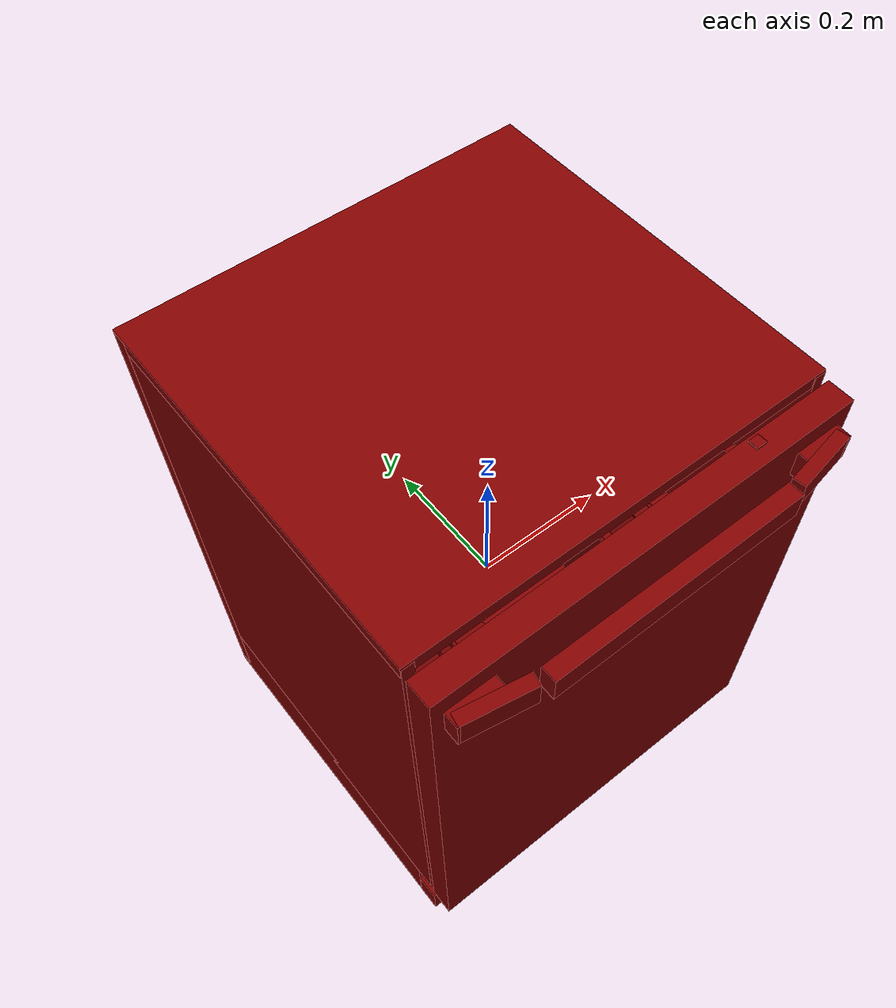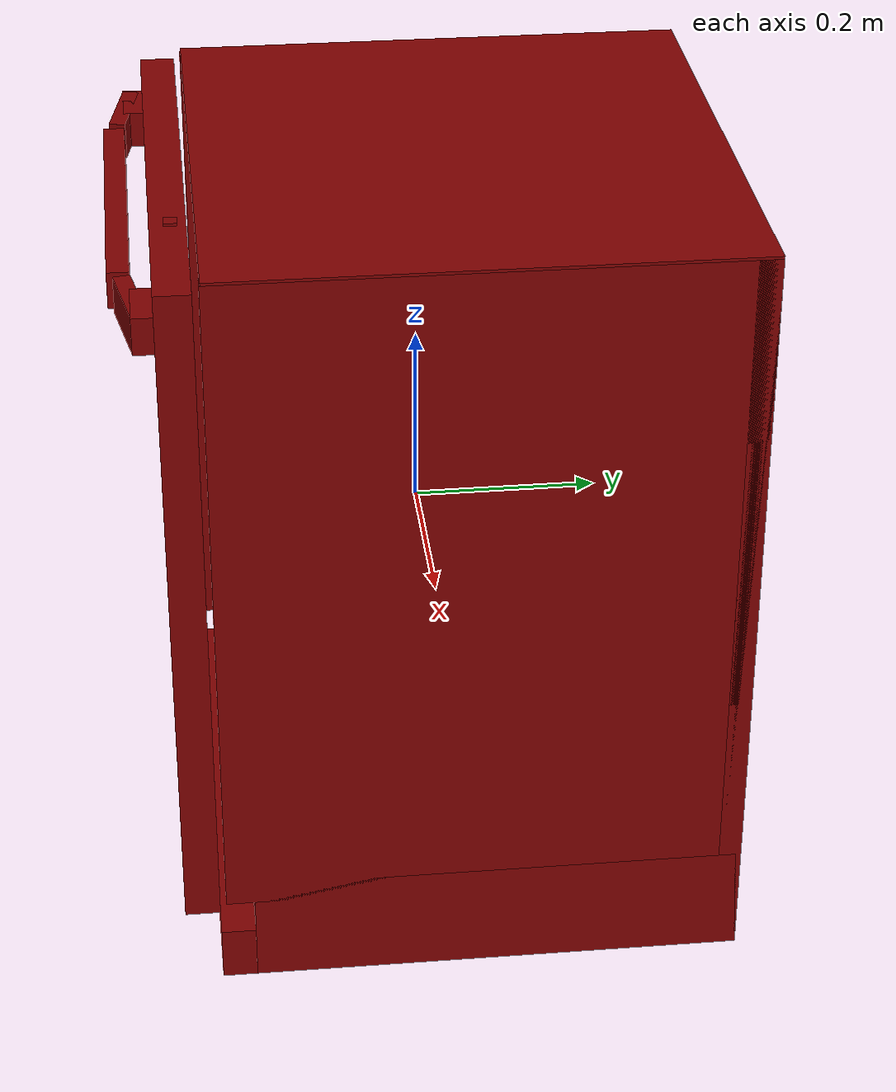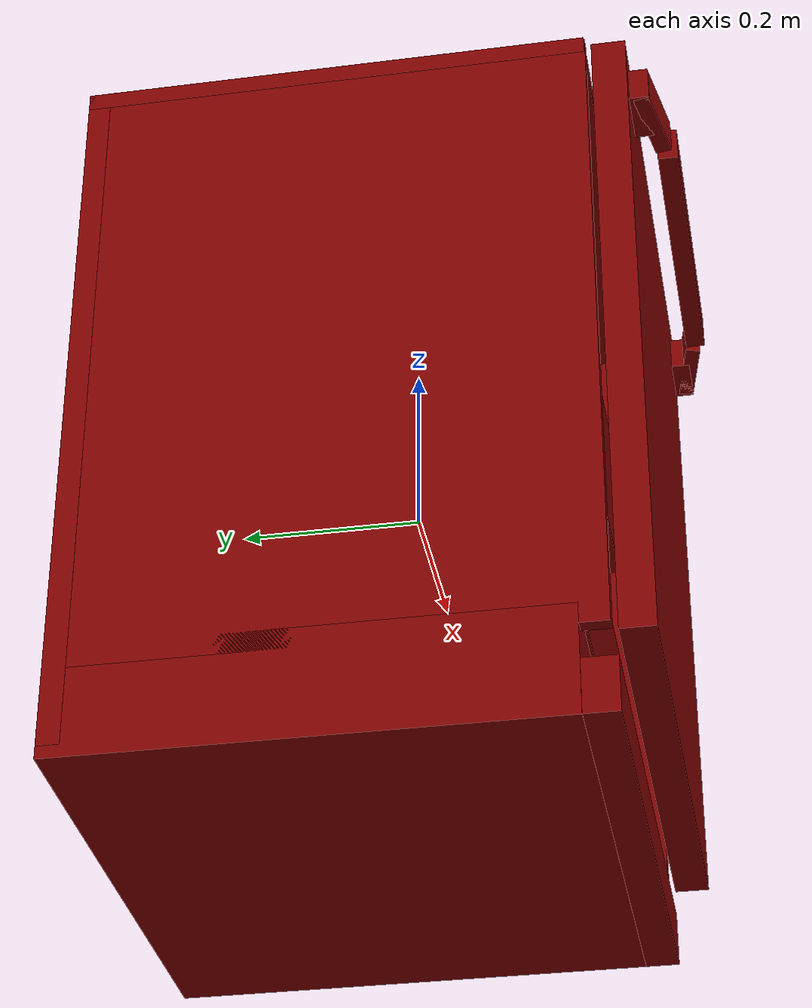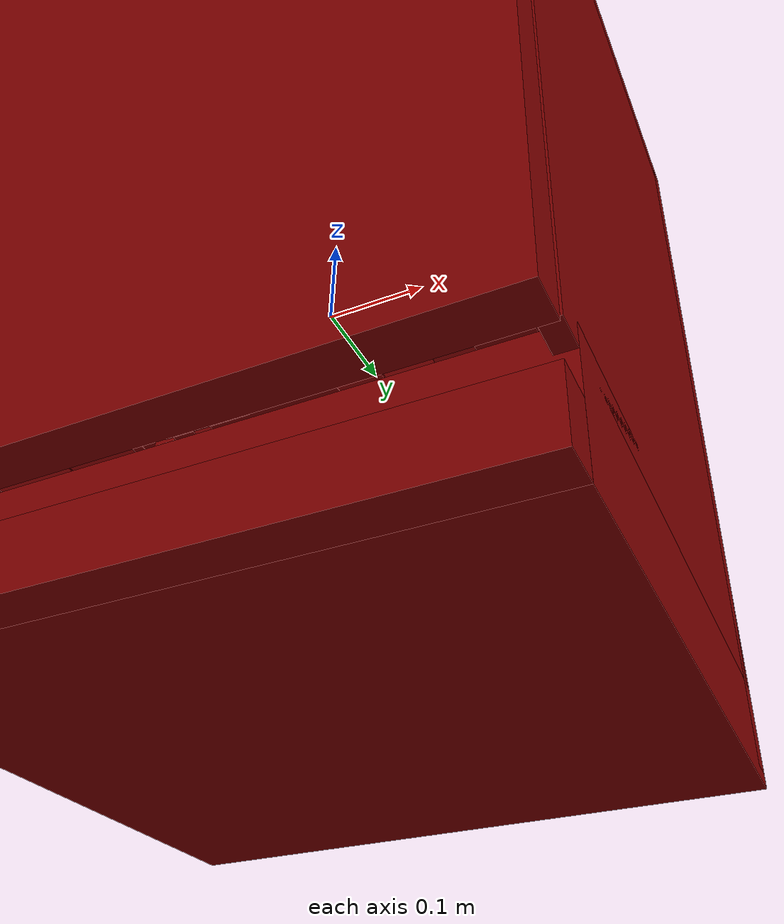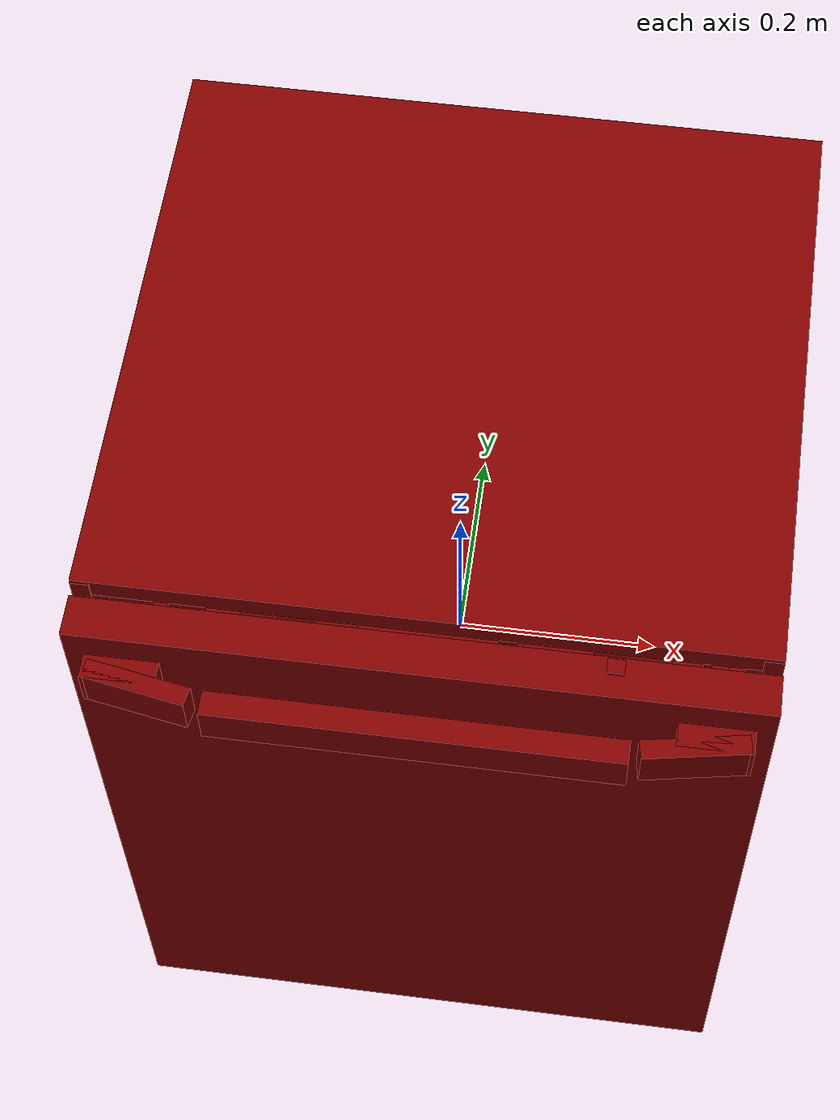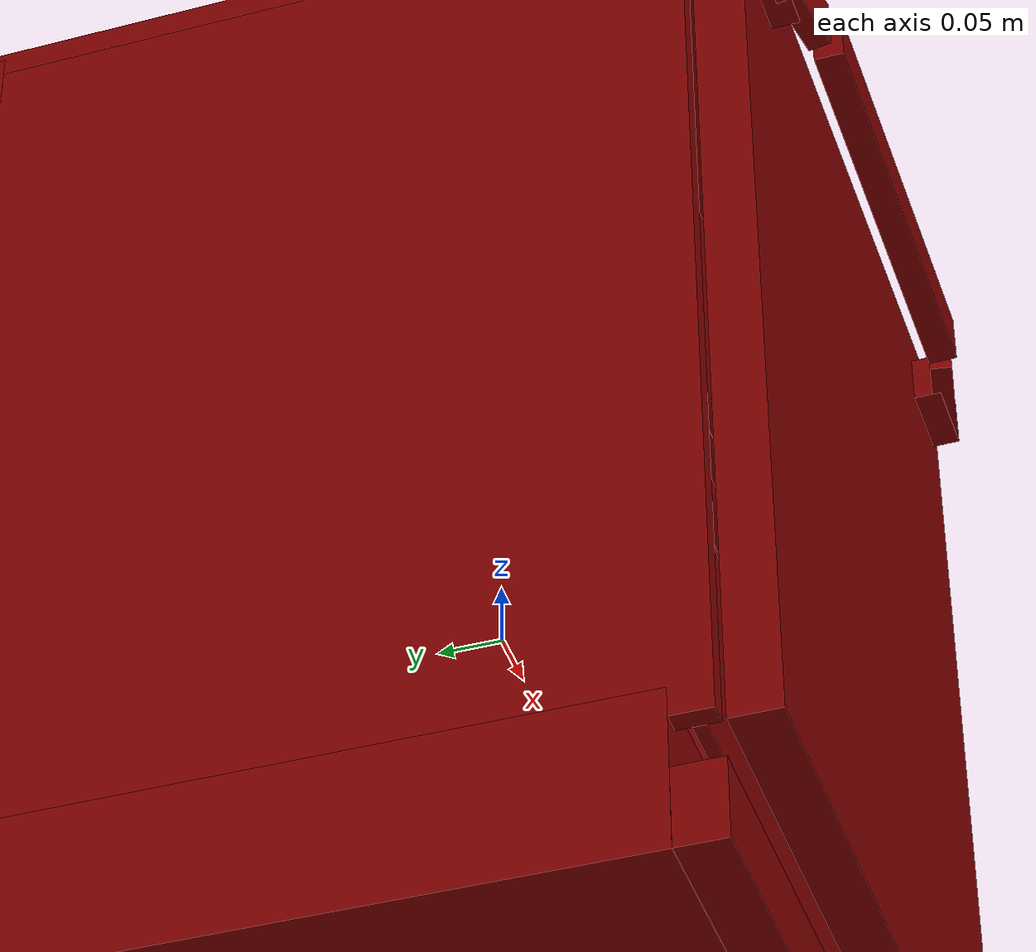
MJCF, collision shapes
<?xml version='1.0' encoding='UTF-8'?>
<mujoco model="model">
  <option timestep="0.002" gravity="0.0 0.0 -9.81"/>
  <compiler angle="radian"/>
  <asset>
    <mesh file="visuals/button_power.obj" name="button_power_vis"/>
    <mesh file="visuals/Body001.obj" name="Body001_vis"/>
    <mesh file="visuals/door.obj" name="door_vis"/>
    <mesh file="visuals/rack0.obj" name="rack0_vis"/>
    <mesh file="visuals/rack1.obj" name="rack1_vis"/>
    <texture file="visuals/T_BC001.png" name="Body001_material" type="2d"/>
    <material name="Body001_material" rgba="1 1 1 1.0" texture="Body001_material" shininess="0.4472135901451111" specular="1"/>
    <texture file="visuals/T_BC001.png" name="door_material" type="2d"/>
    <material name="door_material" rgba="1 1 1 1.0" texture="door_material" shininess="0.4472135901451111" specular="0.3103448502657381"/>
    <texture file="visuals/T_BC001.png" name="button_power_material" type="2d"/>
    <material name="button_power_material" rgba="1 1 1 1.0" texture="button_power_material" shininess="0.4472135901451111" specular="0.3103448502657381"/>
    <texture file="visuals/T_BC001.png" name="rack0_material" type="2d"/>
    <material name="rack0_material" rgba="1 1 1 1.0" texture="rack0_material" shininess="0.4472135901451111" specular="6"/>
    <texture file="visuals/T_BC001.png" name="rack1_material" type="2d"/>
    <material name="rack1_material" rgba="1 1 1 1.0" texture="rack1_material" shininess="0.4472135901451111" specular="6"/>
  </asset>
  <default>
    <default class="visual">
      <geom conaffinity="0" contype="0" group="1" type="mesh"/>
    </default>
    <default class="collision">
      <geom group="0" rgba="0.5 0 0 0.5"/>
    </default>
    <default class="spawn">
      <geom group="0" rgba="1 1 1 0.5" contype="0" conaffinity="0"/>
      <site group="0" rgba="1 1 1 0.5"/>
    </default>
    <default class="region">
      <geom group="1" conaffinity="0" contype="0" rgba="0 1 0 0"/>
    </default>
  </default>
  <worldbody>
    <body>
      <body name="object">
        <geom mesh="Body001_vis" type="mesh" solimp="0.998 0.998 0.001" solref="0.001 1" friction="0.95 0.3 0.1" class="visual" material="Body001_material"/>
        <geom class="collision" type="box" pos="0.00008620 0.05983328 -0.36419403" size="0.3016267418861389 0.26699212193489075 0.0611201748251915" quat="1.0 0.0 0.0 0.0"/>
        <geom class="collision" type="box" pos="0.00000007 0.04486157 0.41210702" size="0.30171290040016174 0.28196385502815247 0.010303902439773083" quat="1.0 0.0 0.0 0.0"/>
        <geom class="collision" type="box" pos="0.29328403 0.04432606 0.04678811" size="0.008428912609815598 0.28249937295913696 0.37254369258880615" quat="1.0 0.0 0.0 0.0"/>
        <geom class="collision" type="box" pos="0.00000003 0.31450621 0.00412353" size="0.3017129600048065 0.012319179251790047 0.41520828008651733" quat="1.0 0.0 0.0 0.0"/>
        <geom class="collision" type="box" pos="-0.29329476 0.04432606 0.04678811" size="0.008245748467743397 0.28249937295913696 0.37254369258880615" quat="1.0 0.0 0.0 0.0"/>
        <geom class="collision" type="box" pos="-0.27969834 0.10069304 0.13969295" size="0.008072211407124996 0.14516490697860718 0.008339897729456425" quat="1.0 0.0 0.0 0.0"/>
        <geom class="collision" type="box" pos="0.28014010 0.10069304 0.13968127" size="0.008715931326150894 0.14517070353031158 0.007516654673963785" quat="1.0 0.0 0.0 0.0"/>
        <geom class="collision" type="box" pos="0.27828360 0.04413274 0.16175027" size="0.011779433116316795 0.20173673331737518 0.003300129435956478" quat="1.0 0.0 0.0 0.0"/>
        <geom class="collision" type="box" pos="0.27821636 0.04413274 -0.15918684" size="0.011056333780288696 0.20172521471977234 0.0036410565953701735" quat="1.0 0.0 0.0 0.0"/>
        <geom class="collision" type="box" pos="0.27974531 0.10069304 -0.18106156" size="0.008320406079292297 0.14515919983386993 0.009179674088954926" quat="1.0 0.0 0.0 0.0"/>
        <geom class="collision" type="box" pos="-0.28040370 0.10069304 -0.18106156" size="0.008815526962280273 0.14516490697860718 0.008024648763239384" quat="1.0 0.0 0.0 0.0"/>
        <geom class="collision" type="box" pos="-0.27876383 0.04413274 -0.15908442" size="0.01166205108165741 0.20172521471977234 0.0036444365978240967" quat="1.0 0.0 0.0 0.0"/>
        <geom class="collision" type="box" pos="-0.27803135 0.04413274 0.16204644" size="0.010908546857535839 0.2017364799976349 0.0035747108049690723" quat="1.0 0.0 0.0 0.0"/>
        <geom class="collision" type="box" pos="-0.00000000 -0.22599141 -0.39492956" size="0.3017129600048065 0.018683088943362236 0.030384669080376625" quat="1.0 0.0 0.0 0.0"/>
        <body name="door">
          <joint axis="1.0 0.0 0.0" pos="-1e-08 -0.27813975134308216 -0.32796516841789247" limited="true" name="door_joint" range="0.0 0.5235987755982988" type="hinge" damping="1" frictionloss="10" armature="1" stiffness="2"/>
          <geom mesh="door_vis" type="mesh" solimp="0.998 0.998 0.001" solref="0.001 1" friction="0.95 0.3 0.1" class="visual" material="door_material"/>
          <geom class="collision" type="box" pos="-0.23685500 -0.30370354 0.35991735" size="0.04660938307642937 0.008954321034252644 0.019917838275432587" quat="7.52008944004956e-08 0.9960660338401794 -0.08861380070447922 -6.690157761113369e-09" name="door_handle_2"/>
          <geom class="collision" type="box" pos="-0.25305581 -0.28935384 0.35991735" size="0.03264765068888664 0.015286944806575775 0.019917840138077736" quat="1.0 0.0 0.0 0.0"/>
          <geom class="collision" type="box" pos="0.23639640 -0.30370354 0.35991735" size="0.04660938307642937 0.008954321034252644 0.019917838275432587" quat="0.9960660338401794 0.0 0.0 0.08861380070447922" name="door_handle_1"/>
          <geom class="collision" type="box" pos="0.25259721 -0.28935384 0.35991735" size="0.03264765068888664 0.015286942012608051 0.019917838275432587" quat="1.0 0.0 0.0 0.0"/>
          <geom class="collision" type="box" pos="-0.00000001 -0.26390969 0.03707438" size="0.30171290040016174 0.018862580880522728 0.3735530972480774" quat="1.0 0.0 0.0 0.0"/>
          <geom class="collision" type="box" pos="0.00141905 -0.31558469 0.35991735" size="0.18082599341869354 0.011358349584043026 0.019917840138077736" quat="1.0 0.0 0.0 0.0" name="door_handle_main"/>
          <geom class="collision" type="box" pos="-0.00000001 -0.27324223 0.03629929" size="0.2936041057109833 0.0048975213430821896 0.36426445841789246" quat="1.0 0.0 0.0 0.0" name="door_main"/>
          <body name="button_power">
            <joint axis="0.0 0.0 -1.0" pos="0.16338511 -0.26136610 0.42208216" limited="true" name="button_power_joint" range="0.0 0.002" type="slide" damping="1" frictionloss="1" armature=".01" springref="-1" stiffness="4"/>
            <geom mesh="button_power_vis" type="mesh" solimp="0.998 0.998 0.001" solref="0.001 1" friction="0.95 0.3 0.1" class="visual" material="button_power_material"/>
            <geom class="collision" type="box" pos="0.16338512 -0.26136610 0.42371369" size="0.007603623438626528 0.006889847572892904 0.0014292041305452585" quat="1.0 0.0 0.0 0.0"/>
          </body>
        </body>
        <body name="rack0">
          <geom class="region" name="reg_rack0" type="box" pos="7.292000000000409e-05 0.017167280000000007 -0.0797627" size="0.24345738 0.20266043 0.13212106"/>
          <joint axis="0.0 -1.0 0.0" pos="0.00002422 0.03112435 -0.16737707" limited="true" name="rack0_joint" range="0.0 0.08" type="slide" damping="1" frictionloss="1" armature=".01" stiffness="0.05"/>
          <geom mesh="rack0_vis" type="mesh" solimp="0.998 0.998 0.001" solref="0.001 1" friction="0.95 0.3 0.1" class="visual" material="rack0_material"/>
          <geom class="collision" type="box" pos="-0.06689170 0.02304492 -0.23635083" size="0.013266862370073795 0.006309156771749258 0.002024671994149685" quat="1.0 0.0 0.0 0.0"/>
          <geom class="collision" type="box" pos="-0.07983516 0.02307597 -0.23276207" size="0.0009215290774591267 0.006419182289391756 0.002024671994149685" quat="1.0 0.0 0.0 0.0"/>
          <geom class="collision" type="box" pos="-0.08394356 0.02307597 -0.23101783" size="0.004006793722510338 0.006419182755053043 0.0005324396188370883" quat="1.0 0.0 0.0 0.0"/>
          <geom class="collision" type="box" pos="-0.08829404 0.02307597 -0.22744929" size="0.0006814482621848583 0.006419182289391756 0.004163840319961309" quat="1.0 0.0 0.0 0.0"/>
          <geom class="collision" type="box" pos="-0.04980827 -0.03433928 -0.24037558" size="0.013340570963919163 0.006175429560244083 0.006049413233995438" quat="1.0 0.0 0.0 0.0"/>
          <geom class="collision" type="box" pos="-0.08829404 -0.03450436 -0.22744929" size="0.0006814482621848583 0.006419182289391756 0.004163840319961309" quat="1.0 0.0 0.0 0.0"/>
          <geom class="collision" type="box" pos="-0.04980827 0.02324105 -0.24037558" size="0.013340570963919163 0.006175429560244083 0.006049413233995438" quat="1.0 0.0 0.0 0.0"/>
          <geom class="collision" type="box" pos="-0.08394356 -0.03450436 -0.23101783" size="0.004006793722510338 0.006419182755053043 0.0005324396188370883" quat="1.0 0.0 0.0 0.0"/>
          <geom class="collision" type="box" pos="-0.07983516 -0.03450436 -0.23276207" size="0.0009215290774591267 0.006419182289391756 0.002024671994149685" quat="1.0 0.0 0.0 0.0"/>
          <geom class="collision" type="box" pos="-0.06689170 -0.03453541 -0.23635083" size="0.013266862370073795 0.006309156771749258 0.002024671994149685" quat="1.0 0.0 0.0 0.0"/>
          <geom class="collision" type="box" pos="-0.06689170 -0.09988754 -0.23635083" size="0.013266862370073795 0.006309156771749258 0.002024671994149685" quat="1.0 0.0 0.0 0.0"/>
          <geom class="collision" type="box" pos="-0.07983516 -0.09985649 -0.23276207" size="0.0009215290774591267 0.006419182289391756 0.002024671994149685" quat="1.0 0.0 0.0 0.0"/>
          <geom class="collision" type="box" pos="-0.08394356 -0.09985649 -0.23101783" size="0.004006793722510338 0.006419182755053043 0.0005324396188370883" quat="1.0 0.0 0.0 0.0"/>
          <geom class="collision" type="box" pos="-0.08829404 -0.09985649 -0.22744929" size="0.0006814482621848583 0.006419182289391756 0.004163840319961309" quat="1.0 0.0 0.0 0.0"/>
          <geom class="collision" type="box" pos="-0.04980827 -0.09969142 -0.24037558" size="0.013340570963919163 0.006175429560244083 0.006049413233995438" quat="1.0 0.0 0.0 0.0"/>
          <geom class="collision" type="box" pos="-0.04980827 -0.14260092 -0.24037558" size="0.013340570963919163 0.006175429560244083 0.006049413233995438" quat="1.0 0.0 0.0 0.0"/>
          <geom class="collision" type="box" pos="-0.08829404 -0.14276600 -0.22744929" size="0.0006814482621848583 0.006419182289391756 0.004163840319961309" quat="1.0 0.0 0.0 0.0"/>
          <geom class="collision" type="box" pos="-0.08394356 -0.14276600 -0.23101783" size="0.004006793722510338 0.006419182755053043 0.0005324396188370883" quat="1.0 0.0 0.0 0.0"/>
          <geom class="collision" type="box" pos="-0.07983516 -0.14276600 -0.23276207" size="0.0009215290774591267 0.006419182289391756 0.002024671994149685" quat="1.0 0.0 0.0 0.0"/>
          <geom class="collision" type="box" pos="-0.06689170 -0.14279705 -0.23635083" size="0.013266862370073795 0.006309156771749258 0.002024671994149685" quat="1.0 0.0 0.0 0.0"/>
          <geom class="collision" type="box" pos="-0.02832828 0.07345534 -0.25889191" size="0.19184672832489014 0.012827771715819836 0.005360372830182314" quat="1.0 0.0 0.0 0.0"/>
          <geom class="collision" type="box" pos="-0.00507184 -0.16622451 -0.24287042" size="0.03811417520046234 0.006508534774184227 0.010936778038740158" quat="1.0 0.0 0.0 0.0"/>
          <geom class="collision" type="box" pos="-0.00507184 -0.16158303 -0.23641565" size="0.03811417520046234 0.006508534774184227 0.004481990821659565" quat="1.0 0.0 0.0 0.0"/>
          <geom class="collision" type="box" pos="-0.26045099 0.08568126 -0.16390529" size="0.0016526459949091077 0.17005625367164612 0.009929705411195755" quat="1.0 0.0 0.0 0.0"/>
          <geom class="collision" type="box" pos="-0.26048613 -0.09408942 -0.19091722" size="0.0016175021883100271 0.010302465409040451 0.036940351128578186" quat="1.0 0.0 0.0 0.0"/>
          <geom class="collision" type="box" pos="-0.26701790 -0.04439475 -0.16574785" size="0.005428370554000139 0.005095627158880234 0.0014640236040577292" quat="1.0 0.0 0.0 0.0"/>
          <geom class="collision" type="box" pos="-0.26724866 -0.04439475 -0.19372841" size="0.00519761024042964 0.005095629021525383 0.001811037422157824" quat="1.0 0.0 0.0 0.0"/>
          <geom class="collision" type="box" pos="-0.26724866 -0.04787228 -0.17928502" size="0.005197612103074789 0.0016182581894099712 0.013074970804154873" quat="1.0 0.0 0.0 0.0"/>
          <geom class="collision" type="box" pos="-0.26731455 0.10135947 -0.16857218" size="0.00418673362582922 0.14790117740631104 0.001782895065844059" quat="1.0 0.0 0.0 0.0"/>
          <geom class="collision" type="box" pos="-0.26274502 0.07581333 -0.15232554" size="0.004239172674715519 0.17992454767227173 0.0018912501400336623" quat="1.0 0.0 0.0 0.0"/>
          <geom class="collision" type="box" pos="-0.26632199 0.10135947 -0.17248717" size="0.0031942855566740036 0.14790129661560059 0.002412961097434163" quat="1.0 0.0 0.0 0.0"/>
          <geom class="collision" type="box" pos="-0.26632199 0.10135947 -0.19043123" size="0.003194286487996578 0.14790135622024536 0.0024129620287567377" quat="1.0 0.0 0.0 0.0"/>
          <geom class="collision" type="box" pos="-0.26632199 -0.03863039 -0.18146935" size="0.003194287419319153 0.007917609065771103 0.007178321480751038" quat="1.0 0.0 0.0 0.0"/>
          <geom class="collision" type="box" pos="-0.26632199 0.11468822 -0.18146935" size="0.0031942883506417274 0.13459277153015137 0.007178323343396187" quat="1.0 0.0 0.0 0.0"/>
          <geom class="collision" type="box" pos="-0.26386875 -0.02691536 -0.18146935" size="0.0007411234546452761 0.007917617447674274 0.007178325206041336" quat="1.0 0.0 0.0 0.0"/>
          <geom class="collision" type="box" pos="-0.26670945 0.10133565 -0.19365176" size="0.00465842429548502 0.14793789386749268 0.00188772554975003" quat="1.0 0.0 0.0 0.0"/>
          <geom class="collision" type="box" pos="-0.26286417 0.02139899 -0.19251606" size="0.004065677057951689 0.01642462983727455 0.01875312812626362" quat="1.0 0.0 0.0 0.0"/>
          <geom class="collision" type="box" pos="-0.26286417 0.06417135 -0.19251606" size="0.004065679386258125 0.02429373562335968 0.018753135576844215" quat="1.0 0.0 0.0 0.0"/>
          <geom class="collision" type="box" pos="-0.26286417 0.10973596 -0.19251606" size="0.0040656812489032745 0.0185822993516922 0.018753143027424812" quat="1.0 0.0 0.0 0.0"/>
          <geom class="collision" type="box" pos="-0.26286417 0.19360224 -0.19251606" size="0.004065683111548424 0.062086962163448334 0.01875315047800541" quat="1.0 0.0 0.0 0.0"/>
          <geom class="collision" type="box" pos="0.26283953 0.19360224 -0.19251606" size="0.004090896341949701 0.06208697706460953 0.018753157928586006" quat="1.0 0.0 0.0 0.0"/>
          <geom class="collision" type="box" pos="0.26283953 0.10973596 -0.19251606" size="0.0040908982045948505 0.01858232170343399 0.018753165379166603" quat="1.0 0.0 0.0 0.0"/>
          <geom class="collision" type="box" pos="0.26283953 0.06417135 -0.19251606" size="0.00409090006724 0.024293772876262665 0.0187531728297472" quat="1.0 0.0 0.0 0.0"/>
          <geom class="collision" type="box" pos="0.26283953 0.02139899 -0.19251606" size="0.004090901929885149 0.01642468199133873 0.018753182142972946" quat="1.0 0.0 0.0 0.0"/>
          <geom class="collision" type="box" pos="0.26688278 0.10133565 -0.19365176" size="0.004881616216152906 0.14793843030929565 0.0018877298571169376" quat="1.0 0.0 0.0 0.0"/>
          <geom class="collision" type="box" pos="0.26381886 -0.02691536 -0.18146935" size="0.0007411260157823563 0.007917658425867558 0.007178346160799265" quat="1.0 0.0 0.0 0.0"/>
          <geom class="collision" type="box" pos="0.26627210 0.11468822 -0.18146935" size="0.0031943004578351974 0.13459356129169464 0.007178348023444414" quat="1.0 0.0 0.0 0.0"/>
          <geom class="collision" type="box" pos="0.26627210 -0.03863038 -0.18146935" size="0.003194301389157772 0.007917665876448154 0.007178349886089563" quat="1.0 0.0 0.0 0.0"/>
          <geom class="collision" type="box" pos="0.26627210 0.10135947 -0.19043123" size="0.0031943023204803467 0.14790238440036774 0.00241297809407115" quat="1.0 0.0 0.0 0.0"/>
          <geom class="collision" type="box" pos="0.26627210 0.10135947 -0.17248717" size="0.0031943032518029213 0.1479024440050125 0.0024129790253937244" quat="1.0 0.0 0.0 0.0"/>
          <geom class="collision" type="box" pos="0.26431802 0.07581333 -0.15207025" size="0.005862073507159948 0.1799258142709732 0.0021465064492076635" quat="1.0 0.0 0.0 0.0"/>
          <geom class="collision" type="box" pos="0.26726469 0.10135947 -0.16857218" size="0.0041867769323289394 0.14790256321430206 0.001782905892468989" quat="1.0 0.0 0.0 0.0"/>
          <geom class="collision" type="box" pos="0.26719877 -0.04787228 -0.17928502" size="0.005197659134864807 0.0016182699473574758 0.013075064867734909" quat="1.0 0.0 0.0 0.0"/>
          <geom class="collision" type="box" pos="0.26719877 -0.04439475 -0.19372841" size="0.005197660997509956 0.0050956797786056995 0.0018110501114279032" quat="1.0 0.0 0.0 0.0"/>
          <geom class="collision" type="box" pos="0.26696804 -0.04439475 -0.16574785" size="0.005428425036370754 0.005095681641250849 0.001464037224650383" quat="1.0 0.0 0.0 0.0"/>
          <geom class="collision" type="box" pos="0.26043624 -0.09408942 -0.19091722" size="0.0016175167402252555 0.010302581824362278 0.03694082051515579" quat="1.0 0.0 0.0 0.0"/>
          <geom class="collision" type="box" pos="0.26040110 0.08568126 -0.16390529" size="0.0016526614781469107 0.1700582355260849 0.009929830208420753" quat="1.0 0.0 0.0 0.0"/>
          <geom class="collision" type="box" pos="-0.02890452 0.03168826 -0.24256935" size="0.009459957480430603 0.19589801132678986 0.009459900669753551" quat="1.0 0.0 0.0 0.0"/>
          <geom class="collision" type="box" pos="-0.16545722 0.25682286 -0.15935749" size="0.09589129686355591 0.005256345961242914 0.08801061660051346" quat="1.0 0.0 0.0 0.0"/>
          <geom class="collision" type="box" pos="-0.05877124 0.24719654 -0.15439132" size="0.018606767058372498 0.005256484728306532 0.08341021835803986" quat="0.9204282760620117 0.0 -0.0 -0.3909115195274353"/>
          <geom class="collision" type="box" pos="-0.00184746 0.23384180 -0.15935749" size="0.04493672028183937 0.005945416167378426 0.08801066875457764" quat="1.0 0.0 0.0 0.0"/>
          <geom class="collision" type="box" pos="0.05490205 0.24348650 -0.15439132" size="0.018606767058372498 0.005256484728306532 0.08341021835803986" quat="0.3173389434814453 0.0 -0.0 -0.9483121633529663"/>
          <geom class="collision" type="box" pos="0.16230601 0.25682286 -0.15935749" size="0.09589140862226486 0.005256349220871925 0.08801072090864182" quat="1.0 0.0 0.0 0.0"/>
          <geom class="collision" type="box" pos="-0.25816810 0.03486273 -0.15935749" size="0.006974444258958101 0.22568096220493317 0.08801078051328659" quat="1.0 0.0 0.0 0.0"/>
          <geom class="collision" type="box" pos="-0.00009505 -0.19602218 -0.15935749" size="0.2634020149707794 0.005256377160549164 0.08801083266735077" quat="1.0 0.0 0.0 0.0"/>
          <geom class="collision" type="box" pos="0.25744751 0.03486269 -0.15935749" size="0.008079292252659798 0.22568118572235107 0.08801088482141495" quat="1.0 0.0 0.0 0.0"/>
          <geom class="collision" type="box" pos="-0.23729941 0.03486273 -0.24713471" size="0.023139994591474533 0.22568129003047943 0.0025168335996568203" quat="1.0 0.0 0.0 0.0"/>
          <geom class="collision" type="box" pos="-0.19341405 0.03486273 -0.23430004" size="0.22568948566913605 0.0025168827269226313 0.026395291090011597" quat="0.6152599453926086 0.34850409626960754 0.3485041558742523 0.6152600646018982"/>
          <geom class="collision" type="box" pos="-0.15570804 0.03486273 -0.23319724" size="0.22568948566913605 0.002516882959753275 0.02121862769126892" quat="0.279901921749115 0.649349570274353 0.6493496298789978 0.27990207076072693"/>
          <geom class="collision" type="box" pos="-0.11756045 0.03486273 -0.23934513" size="0.22568948566913605 0.0025168831925839186 0.0251455157995224" quat="0.5795987844467163 0.4050496518611908 0.4050496816635132 0.5795987844467163"/>
          <geom class="collision" type="box" pos="0.00046990 0.03486273 -0.23102578" size="0.09508517384529114 0.2256813943386078 0.002690754598006606" quat="1.0 0.0 0.0 0.0"/>
          <geom class="collision" type="box" pos="0.11886489 0.03486273 -0.23954162" size="0.22568948566913605 0.002516882959753275 0.025858500972390175" quat="0.4052272140979767 0.579474687576294 0.579474687576294 0.4052272439002991"/>
          <geom class="collision" type="box" pos="0.15557404 0.03486273 -0.23386314" size="0.22568948566913605 0.002516882959753275 0.021187731996178627" quat="0.6499353051185608 0.27853918075561523 0.2785392105579376 0.6499353051185608"/>
          <geom class="collision" type="box" pos="0.19398433 0.03486273 -0.23408159" size="0.22568948566913605 0.002516882959753275 0.028035128489136696" quat="0.3555333912372589 0.6112250089645386 0.6112250089645386 0.3555334210395813"/>
          <geom class="collision" type="box" pos="0.23743968 0.03486273 -0.24773141" size="0.02297111228108406 0.22568151354789734 0.0026653639506548643" quat="1.0 0.0 0.0 0.0"/>
          <geom class="collision" type="box" pos="0.19291317 0.04411633 -0.20596066" size="0.19851535558700562 0.002516882959753275 0.04670282453298569" quat="0.1831398904323578 0.6829785704612732 0.682978630065918 0.18313990533351898"/>
          <geom class="collision" type="box" pos="0.05957322 0.02093491 -0.18576488" size="0.18311741948127747 0.002516882959753275 0.04563521593809128" quat="0.09341192990541458 -0.7009094953536987 -0.7009096145629883 0.0934118703007698"/>
          <geom class="collision" type="box" pos="-0.08175866 0.13373146 -0.18344551" size="0.09813521057367325 0.002516882959753275 0.04563521593809128" quat="0.09341192990541458 -0.7009094953536987 -0.7009096145629883 0.0934118703007698"/>
          <geom class="collision" type="box" pos="-0.15429580 -0.06185097 -0.20041474" size="0.10503371804952621 0.0025168831925839186 0.04563521966338158" quat="0.09089885652065277 0.7012399435043335 0.7012398838996887 0.09089892357587814"/>
        </body>
        <body name="rack1">
          <geom class="region" name="reg_rack1" type="box" pos="7.292000000000409e-05 0.01846164 0.2536179" size="0.24345738 0.20395479 0.14402010999999998"/>
          <joint axis="0.0 -1.0 0.0" pos="0.00002422 0.03112435 0.15308546" limited="true" name="rack1_joint" range="0.0 0.25" type="slide" damping="1" frictionloss="1" armature=".01" stiffness="0.05"/>
          <geom mesh="rack1_vis" type="mesh" solimp="0.998 0.998 0.001" solref="0.001 1" friction="0.95 0.3 0.1" class="visual" material="rack1_material"/>
          <geom class="collision" type="box" pos="-0.06689170 0.02304492 0.08494214" size="0.013266862370073795 0.006309156771749258 0.002024671994149685" quat="1.0 0.0 0.0 0.0"/>
          <geom class="collision" type="box" pos="-0.07983516 0.02307597 0.08853087" size="0.0009215290774591267 0.006419182289391756 0.002024671994149685" quat="1.0 0.0 0.0 0.0"/>
          <geom class="collision" type="box" pos="-0.08394356 0.02307597 0.09027514" size="0.004006793722510338 0.006419182755053043 0.0005324396188370883" quat="1.0 0.0 0.0 0.0"/>
          <geom class="collision" type="box" pos="-0.08829404 0.02307597 0.09384367" size="0.0006814482621848583 0.006419182289391756 0.004163840319961309" quat="1.0 0.0 0.0 0.0"/>
          <geom class="collision" type="box" pos="-0.04980827 -0.03433928 0.08091739" size="0.013340570963919163 0.006175429560244083 0.006049413233995438" quat="1.0 0.0 0.0 0.0"/>
          <geom class="collision" type="box" pos="-0.08829404 -0.03450436 0.09384367" size="0.0006814482621848583 0.006419182289391756 0.004163840319961309" quat="1.0 0.0 0.0 0.0"/>
          <geom class="collision" type="box" pos="-0.04980827 0.02324105 0.08091739" size="0.013340570963919163 0.006175429560244083 0.006049413233995438" quat="1.0 0.0 0.0 0.0"/>
          <geom class="collision" type="box" pos="-0.08394356 -0.03450436 0.09027514" size="0.004006793722510338 0.006419182755053043 0.0005324396188370883" quat="1.0 0.0 0.0 0.0"/>
          <geom class="collision" type="box" pos="-0.07983516 -0.03450436 0.08853087" size="0.0009215290774591267 0.006419182289391756 0.002024671994149685" quat="1.0 0.0 0.0 0.0"/>
          <geom class="collision" type="box" pos="-0.06689170 -0.03453541 0.08494214" size="0.013266862370073795 0.006309156771749258 0.002024671994149685" quat="1.0 0.0 0.0 0.0"/>
          <geom class="collision" type="box" pos="-0.06689170 -0.09988754 0.08494214" size="0.013266862370073795 0.006309156771749258 0.002024671994149685" quat="1.0 0.0 0.0 0.0"/>
          <geom class="collision" type="box" pos="-0.07983516 -0.09985649 0.08853087" size="0.0009215290774591267 0.006419182289391756 0.002024671994149685" quat="1.0 0.0 0.0 0.0"/>
          <geom class="collision" type="box" pos="-0.08394356 -0.09985649 0.09027514" size="0.004006793722510338 0.006419182755053043 0.0005324396188370883" quat="1.0 0.0 0.0 0.0"/>
          <geom class="collision" type="box" pos="-0.08829404 -0.09985649 0.09384367" size="0.0006814482621848583 0.006419182289391756 0.004163840319961309" quat="1.0 0.0 0.0 0.0"/>
          <geom class="collision" type="box" pos="-0.04980827 -0.09969142 0.08091739" size="0.013340570963919163 0.006175429560244083 0.006049413233995438" quat="1.0 0.0 0.0 0.0"/>
          <geom class="collision" type="box" pos="-0.04980827 -0.14260092 0.08091739" size="0.013340570963919163 0.006175429560244083 0.006049413233995438" quat="1.0 0.0 0.0 0.0"/>
          <geom class="collision" type="box" pos="-0.08829404 -0.14276600 0.09384367" size="0.0006814482621848583 0.006419182289391756 0.004163840319961309" quat="1.0 0.0 0.0 0.0"/>
          <geom class="collision" type="box" pos="-0.08394356 -0.14276600 0.09027514" size="0.004006793722510338 0.006419182755053043 0.0005324396188370883" quat="1.0 0.0 0.0 0.0"/>
          <geom class="collision" type="box" pos="-0.07983516 -0.14276600 0.08853087" size="0.0009215290774591267 0.006419182289391756 0.002024671994149685" quat="1.0 0.0 0.0 0.0"/>
          <geom class="collision" type="box" pos="-0.06689170 -0.14279705 0.08494214" size="0.013266862370073795 0.006309156771749258 0.002024671994149685" quat="1.0 0.0 0.0 0.0"/>
          <geom class="collision" type="box" pos="-0.02832828 0.07345534 0.06240109" size="0.19184672832489014 0.012827771715819836 0.005360372830182314" quat="1.0 0.0 0.0 0.0"/>
          <geom class="collision" type="box" pos="-0.00507184 -0.16622451 0.07842252" size="0.03811417520046234 0.006508534774184227 0.010936778038740158" quat="1.0 0.0 0.0 0.0"/>
          <geom class="collision" type="box" pos="-0.00507184 -0.16158303 0.08487734" size="0.03811417520046234 0.006508534774184227 0.004481990821659565" quat="1.0 0.0 0.0 0.0"/>
          <geom class="collision" type="box" pos="-0.26045099 0.08568126 0.15738771" size="0.0016526400577276945 0.17005549371242523 0.009929658845067024" quat="1.0 0.0 0.0 0.0"/>
          <geom class="collision" type="box" pos="-0.26048613 -0.09408942 0.13037578" size="0.001617496251128614 0.010302417911589146 0.03694016486406326" quat="1.0 0.0 0.0 0.0"/>
          <geom class="collision" type="box" pos="-0.26701790 -0.04439475 0.15554509" size="0.005428347270935774 0.005095603410154581 0.001464017666876316" quat="1.0 0.0 0.0 0.0"/>
          <geom class="collision" type="box" pos="-0.26724866 -0.04439475 0.12756452" size="0.005197586491703987 0.00509560527279973 0.0018110314849764109" quat="1.0 0.0 0.0 0.0"/>
          <geom class="collision" type="box" pos="-0.26724866 -0.04787228 0.14200798" size="0.005197588354349136 0.001618252252228558 0.013074924238026142" quat="1.0 0.0 0.0 0.0"/>
          <geom class="collision" type="box" pos="-0.26731455 0.10135947 0.15272078" size="0.004186710342764854 0.14790043234825134 0.0017828892450779676" quat="1.0 0.0 0.0 0.0"/>
          <geom class="collision" type="box" pos="-0.26274502 0.07581333 0.16896746" size="0.0042391493916511536 0.17992380261421204 0.001891244319267571" quat="1.0 0.0 0.0 0.0"/>
          <geom class="collision" type="box" pos="-0.26632199 0.10135947 0.14880583" size="0.0031942736823111773 0.1479005515575409 0.0024129494559019804" quat="1.0 0.0 0.0 0.0"/>
          <geom class="collision" type="box" pos="-0.26632199 0.10135947 0.13086173" size="0.003194274613633752 0.14790061116218567 0.002412950387224555" quat="1.0 0.0 0.0 0.0"/>
          <geom class="collision" type="box" pos="-0.26632199 -0.03863039 0.13982365" size="0.0031942755449563265 0.007917562499642372 0.007178298197686672" quat="1.0 0.0 0.0 0.0"/>
          <geom class="collision" type="box" pos="-0.26632199 0.11468822 0.13982365" size="0.003194276476278901 0.13459202647209167 0.0071783000603318214" quat="1.0 0.0 0.0 0.0"/>
          <geom class="collision" type="box" pos="-0.26386875 -0.02691536 0.13982365" size="0.0007411204860545695 0.007917569950222969 0.007178301922976971" quat="1.0 0.0 0.0 0.0"/>
          <geom class="collision" type="box" pos="-0.26670945 0.10133565 0.12764123" size="0.004658401012420654 0.1479371339082718 0.0018877197289839387" quat="1.0 0.0 0.0 0.0"/>
          <geom class="collision" type="box" pos="-0.26286417 0.02139899 0.12877694" size="0.004065653774887323 0.01642453670501709 0.018753034994006157" quat="1.0 0.0 0.0 0.0"/>
          <geom class="collision" type="box" pos="-0.26286417 0.06417135 0.12877694" size="0.004065655637532473 0.02429364062845707 0.018753042444586754" quat="1.0 0.0 0.0 0.0"/>
          <geom class="collision" type="box" pos="-0.26286417 0.10973596 0.12877694" size="0.004065657500177622 0.018582206219434738 0.01875304989516735" quat="1.0 0.0 0.0 0.0"/>
          <geom class="collision" type="box" pos="-0.26286417 0.19360224 0.12877694" size="0.004065659362822771 0.06208677589893341 0.018753057345747948" quat="1.0 0.0 0.0 0.0"/>
          <geom class="collision" type="box" pos="0.26283953 0.19360224 0.12877694" size="0.004090873058885336 0.062086790800094604 0.018753064796328545" quat="1.0 0.0 0.0 0.0"/>
          <geom class="collision" type="box" pos="0.26283953 0.10973596 0.12877694" size="0.004090874921530485 0.01858222857117653 0.01875307224690914" quat="1.0 0.0 0.0 0.0"/>
          <geom class="collision" type="box" pos="0.26283953 0.06417135 0.12877694" size="0.004090876784175634 0.024293679744005203 0.01875307969748974" quat="1.0 0.0 0.0 0.0"/>
          <geom class="collision" type="box" pos="0.26283953 0.02139899 0.12877694" size="0.004090878646820784 0.01642458885908127 0.018753087148070335" quat="1.0 0.0 0.0 0.0"/>
          <geom class="collision" type="box" pos="0.26688278 0.10133565 0.12764123" size="0.004881592467427254 0.14793768525123596 0.0018877239199355245" quat="1.0 0.0 0.0 0.0"/>
          <geom class="collision" type="box" pos="0.26381886 -0.02691536 0.13982365" size="0.0007411230471916497 0.007917610928416252 0.007178322412073612" quat="1.0 0.0 0.0 0.0"/>
          <geom class="collision" type="box" pos="0.26627210 0.11468822 0.13982365" size="0.0031942888163030148 0.13459280133247375 0.0071783242747187614" quat="1.0 0.0 0.0 0.0"/>
          <geom class="collision" type="box" pos="0.26627210 -0.03863038 0.13982365" size="0.0031942897476255894 0.007917619310319424 0.007178326137363911" quat="1.0 0.0 0.0 0.0"/>
          <geom class="collision" type="box" pos="0.26627210 0.10135947 0.13086173" size="0.003194290678948164 0.14790163934230804 0.002412966452538967" quat="1.0 0.0 0.0 0.0"/>
          <geom class="collision" type="box" pos="0.26627210 0.10135947 0.14880583" size="0.0031942916102707386 0.14790169894695282 0.0024129673838615417" quat="1.0 0.0 0.0 0.0"/>
          <geom class="collision" type="box" pos="0.26431802 0.07581333 0.16922275" size="0.005862049758434296 0.1799250692129135 0.002146494574844837" quat="1.0 0.0 0.0 0.0"/>
          <geom class="collision" type="box" pos="0.26726469 0.10135947 0.15272078" size="0.004186753649264574 0.14790181815624237 0.0017829000717028975" quat="1.0 0.0 0.0 0.0"/>
          <geom class="collision" type="box" pos="0.26719877 -0.04787228 0.14200798" size="0.0051976353861391544 0.0016182640101760626 0.013075018301606178" quat="1.0 0.0 0.0 0.0"/>
          <geom class="collision" type="box" pos="0.26719877 -0.04439475 0.12756452" size="0.005197637248784304 0.005095656029880047 0.00181104417424649" quat="1.0 0.0 0.0 0.0"/>
          <geom class="collision" type="box" pos="0.26696804 -0.04439475 0.15554509" size="0.005428401753306389 0.005095658358186483 0.0014640314038842916" quat="1.0 0.0 0.0 0.0"/>
          <geom class="collision" type="box" pos="0.26043624 -0.09408942 0.13037578" size="0.0016175109194591641 0.010302535258233547 0.03694063052535057" quat="1.0 0.0 0.0 0.0"/>
          <geom class="collision" type="box" pos="0.26040110 0.08568126 0.15738771" size="0.0016526556573808193 0.1700574904680252 0.009929782710969448" quat="1.0 0.0 0.0 0.0"/>
          <geom class="collision" type="box" pos="-0.02890452 0.03168826 0.07872364" size="0.009459957480430603 0.19589801132678986 0.009459900669753551" quat="1.0 0.0 0.0 0.0"/>
          <geom class="collision" type="box" pos="-0.16545722 0.25682286 0.16193548" size="0.09589129686355591 0.005256345961242914 0.08801061660051346" quat="1.0 0.0 0.0 0.0"/>
          <geom class="collision" type="box" pos="-0.05877124 0.24719654 0.16690168" size="0.018606767058372498 0.005256484728306532 0.08341021835803986" quat="0.9204282760620117 0.0 -0.0 -0.3909115195274353"/>
          <geom class="collision" type="box" pos="-0.00184746 0.23384180 0.16193548" size="0.04493672028183937 0.005945416167378426 0.08801066875457764" quat="1.0 0.0 0.0 0.0"/>
          <geom class="collision" type="box" pos="0.05490205 0.24348650 0.16690168" size="0.018606767058372498 0.005256484728306532 0.08341021835803986" quat="0.3173389434814453 0.0 -0.0 -0.9483121633529663"/>
          <geom class="collision" type="box" pos="0.16230601 0.25682286 0.16193548" size="0.09589140862226486 0.005256349220871925 0.08801072090864182" quat="1.0 0.0 0.0 0.0"/>
          <geom class="collision" type="box" pos="-0.25811458 0.03486273 0.16193548" size="0.00692093325778842 0.22568096220493317 0.08801078051328659" quat="1.0 0.0 0.0 0.0"/>
          <geom class="collision" type="box" pos="-0.00009505 -0.19602218 0.16193548" size="0.2634020149707794 0.005256377160549164 0.08801083266735077" quat="1.0 0.0 0.0 0.0"/>
          <geom class="collision" type="box" pos="0.25704134 0.03486269 0.16193548" size="0.007673117332160473 0.22568118572235107 0.08801088482141495" quat="1.0 0.0 0.0 0.0"/>
          <geom class="collision" type="box" pos="-0.23729941 0.03486273 0.07415828" size="0.023139994591474533 0.22568129003047943 0.0025168335996568203" quat="1.0 0.0 0.0 0.0"/>
          <geom class="collision" type="box" pos="-0.19341405 0.03486273 0.08699295" size="0.22568948566913605 0.0025168827269226313 0.026395291090011597" quat="0.6152599453926086 0.34850409626960754 0.3485041558742523 0.6152600646018982"/>
          <geom class="collision" type="box" pos="-0.15570804 0.03486273 0.08809576" size="0.22568948566913605 0.002516882959753275 0.02121862769126892" quat="0.279901921749115 0.649349570274353 0.6493496298789978 0.27990207076072693"/>
          <geom class="collision" type="box" pos="-0.11756045 0.03486273 0.08194784" size="0.22568948566913605 0.0025168831925839186 0.0251455157995224" quat="0.5795987844467163 0.4050496518611908 0.4050496816635132 0.5795987844467163"/>
          <geom class="collision" type="box" pos="0.00046990 0.03486273 0.09026721" size="0.09508517384529114 0.2256813943386078 0.002690754598006606" quat="1.0 0.0 0.0 0.0"/>
          <geom class="collision" type="box" pos="0.11886489 0.03486273 0.08175132" size="0.22568948566913605 0.002516882959753275 0.025858500972390175" quat="0.4052272140979767 0.579474687576294 0.579474687576294 0.4052272439002991"/>
          <geom class="collision" type="box" pos="0.15557404 0.03486273 0.08742985" size="0.22568948566913605 0.002516882959753275 0.021187731996178627" quat="0.6499353051185608 0.27853918075561523 0.2785392105579376 0.6499353051185608"/>
          <geom class="collision" type="box" pos="0.19398433 0.03486273 0.08721140" size="0.22568948566913605 0.002516882959753275 0.028035128489136696" quat="0.3555333912372589 0.6112250089645386 0.6112250089645386 0.3555334210395813"/>
          <geom class="collision" type="box" pos="0.23743968 0.03486273 0.07356158" size="0.02297111228108406 0.22568151354789734 0.0026653639506548643" quat="1.0 0.0 0.0 0.0"/>
          <geom class="collision" type="box" pos="0.19291317 0.04411633 0.11533234" size="0.19851535558700562 0.002516882959753275 0.04670282453298569" quat="0.1831398904323578 0.6829785704612732 0.682978630065918 0.18313990533351898"/>
          <geom class="collision" type="box" pos="0.05957322 0.02093491 0.13552806" size="0.18311741948127747 0.002516882959753275 0.04563521593809128" quat="0.09341192990541458 -0.7009094953536987 -0.7009096145629883 0.0934118703007698"/>
          <geom class="collision" type="box" pos="-0.08175866 0.13373146 0.13784746" size="0.09813521057367325 0.002516882959753275 0.04563521593809128" quat="0.09341192990541458 -0.7009094953536987 -0.7009096145629883 0.0934118703007698"/>
          <geom class="collision" type="box" pos="-0.15429580 -0.06185097 0.12087819" size="0.10503371804952621 0.0025168831925839186 0.04563521966338158" quat="0.09089885652065277 0.7012399435043335 0.7012398838996887 0.09089892357587814"/>
        </body>
        <geom class="region" name="reg_int" type="box" pos="-0.00010959999999998749 0.028914485000000004 0.049311894999999994" size="0.27948168 0.26815758500000003 0.346846875"/>
        <geom class="region" name="reg_main" type="box" pos="0.0 0.022026570000000023 2.149999999978558e-07" size="0.30271293 0.30579887 0.426314485"/>
      </body>
    </body>
  </worldbody>
  <actuator>
    <motor name="door_joint_actuator" joint="door_joint" gear="50"/>
    <motor name="rack0_joint_actuator" joint="rack0_joint" gear="50"/>
    <motor name="rack1_joint_actuator" joint="rack1_joint" gear="50"/>
    <motor name="button_power_joint_actuator" joint="button_power_joint" gear="0.5"/>
  </actuator>
</mujoco>
